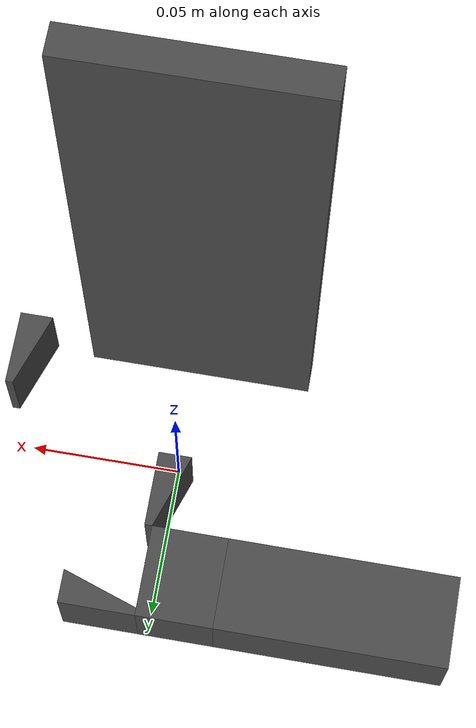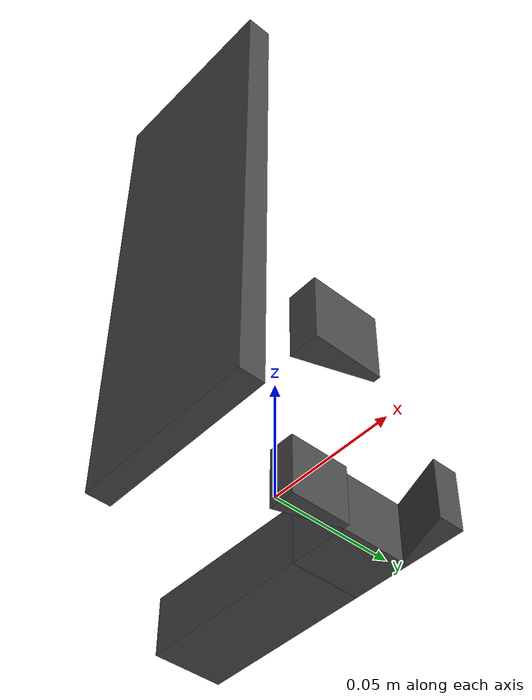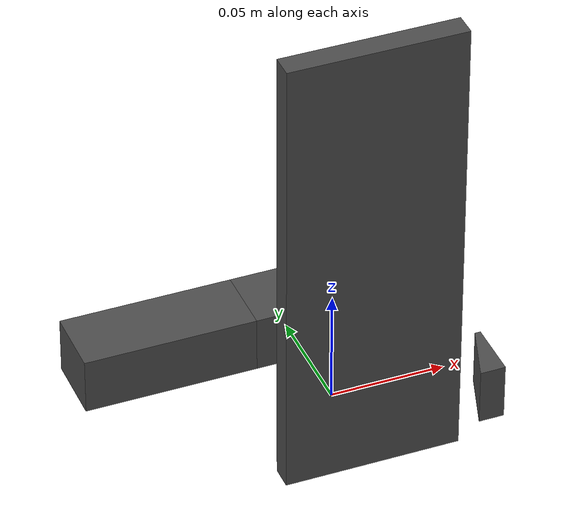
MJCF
<mujoco>
    <option integrator="implicitfast" impratio="20" noslip_iterations="5" cone="elliptic">
        <flag multiccd="enable"/>
    </option>
    <asset>
    <!-- h_block -->

    <mesh name="h_block1" file="join_assets/hBlock/Part Studio 1 - Part 1.stl" scale="0.001 0.001 0.001"/>
    <mesh name="h_block2" file="join_assets/hBlock/Part Studio 1 - Part 2.stl" scale="0.001 0.001 0.001"/>
    <mesh name="h_block3" file="join_assets/hBlock/Part Studio 1 - Part 3.stl" scale="0.001 0.001 0.001"/>
    <mesh name="h_block4" file="join_assets/hBlock/Part Studio 1 - Part 4.stl" scale="0.001 0.001 0.001"/>
    <mesh name="h_block5" file="join_assets/hBlock/Part Studio 1 - Part 5.stl" scale="0.001 0.001 0.001"/>
    <mesh name="h_block6" file="join_assets/hBlock/Part Studio 1 - Part 6.stl" scale="0.001 0.001 0.001"/>
    <mesh name="h_block7" file="join_assets/hBlock/Part Studio 1 - Part 7.stl" scale="0.001 0.001 0.001"/>
    <mesh name="h_block8" file="join_assets/hBlock/Part Studio 1 - Part 8.stl" scale="0.001 0.001 0.001"/>

    <material name="black" rgba="0.15 0.15 0.15 1"/>
    </asset>

    <default>
        <default class="visual">
            <geom type="mesh" mass="0" group="1" material="black" contype="0" conaffinity="0"/>
        </default>
        <default class="collision">
            <geom group="3" type="capsule" condim="6" friction="1 5e-3 5e-4" solref=".01 1" contype="2" conaffinity="1"/>
        </default>
     </default>

    <worldbody>
        <body name="hblock" pos="0 0 0" euler="0 0  0">
            <joint name="hblock_joint" type="free" frictionloss="0.001" />

            <geom type="mesh" mesh="h_block1" rgba="0.3 0.3 0.3 1" group="1" contype="0" conaffinity="0"/>
            <geom  size="0.0375 0.015 0.0125"  pos="-0.055255 0.043 0.0125" class="collision" type="box" friction="3.0 0.1 0.1" solref="0.003 1"
      solimp="0.95 0.99 0.0005"
      condim="4"/>

            <geom type="mesh" mesh="h_block2" rgba="0.3 0.3 0.3 1" group="1" contype="0" conaffinity="0"/>
            <geom type="mesh" mesh="h_block2" class="collision"  friction="1.5 0.5 0.5" />

            <geom type="mesh" mesh="h_block3" rgba="0.3 0.3 0.3 1" group="1" contype="0" conaffinity="0"/>
            <geom type="mesh" mesh="h_block3" class="collision"  friction="1.5 0.5 0.5"  />

            <geom type="mesh" mesh="h_block4" rgba="0.3 0.3 0.3 1" group="1" contype="0" conaffinity="0"/>
            <geom type="mesh" mesh="h_block4" class="collision"  friction="1.5 0.5 0.5" />

            <geom type="mesh" mesh="h_block5" rgba="0.3 0.3 0.3 1" group="1" contype="0" conaffinity="0"/>
            <geom type="mesh" mesh="h_block5" class="collision"  friction="1.5 0.5 0.5" />

            <geom type="mesh" mesh="h_block6" rgba="0.3 0.3 0.3 1" group="1" contype="0" conaffinity="0"/>
            <geom type="mesh" mesh="h_block6" class="collision"  friction="1 0.5 0.5" />

            <!-- markers -->
            <geom type="mesh" mesh="h_block7" rgba="1 0.5 0.5 0"  name="marker_block"  friction="0 0 0" mass="0" group="2" contype="0" conaffinity="0"/>
            <geom type="mesh" mesh="h_block8" rgba="1 0.5 0.5 0"  name="marker_wall" friction="0 0 0" mass="0" group="2" contype="0" conaffinity="0"/>

        </body>
    </worldbody>
</mujoco>
